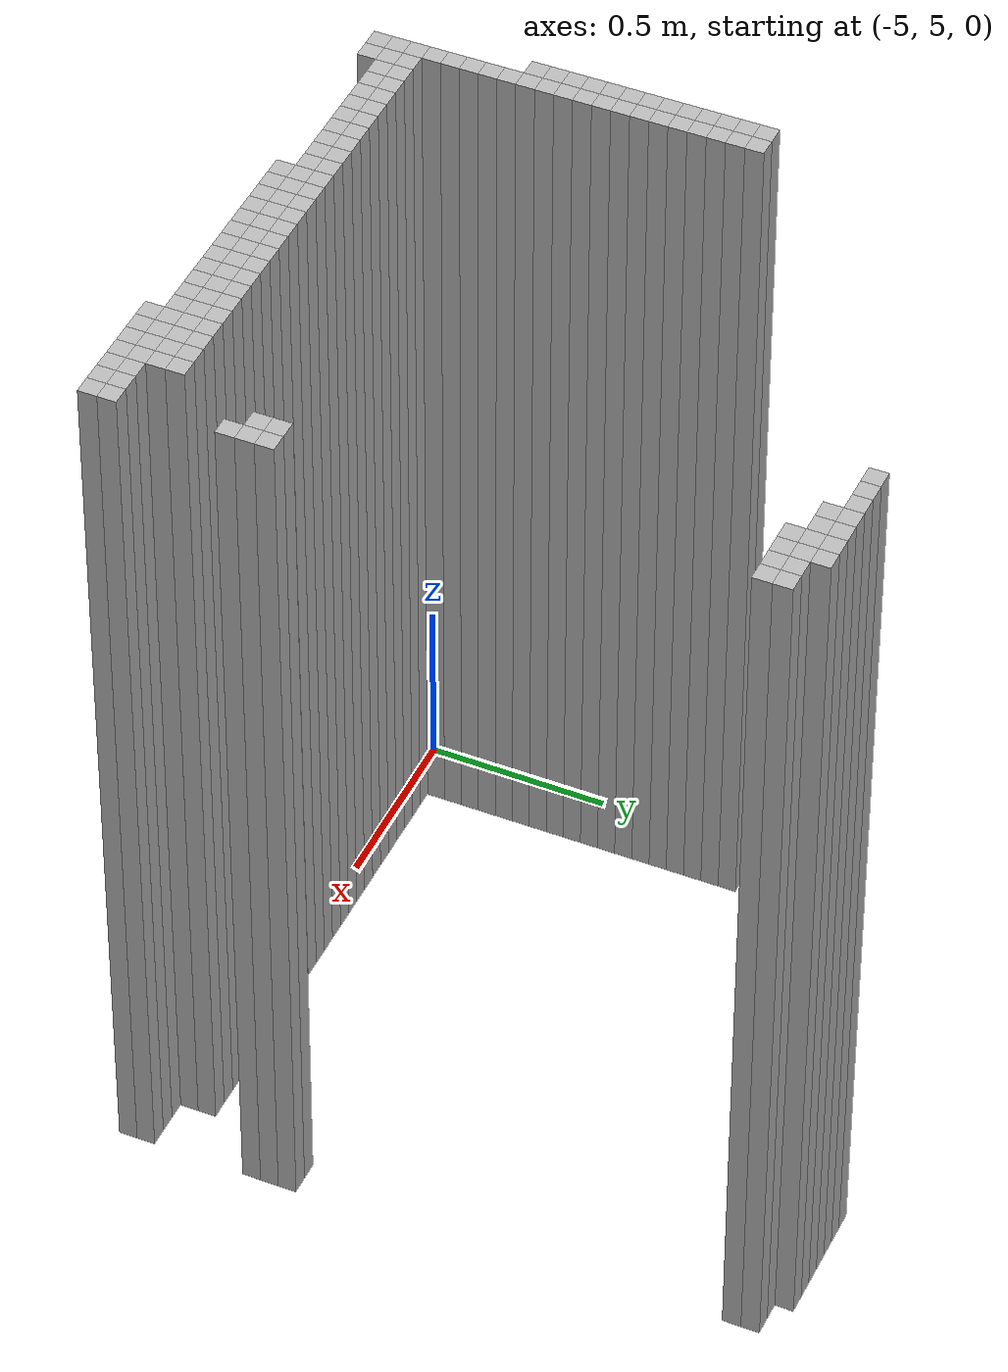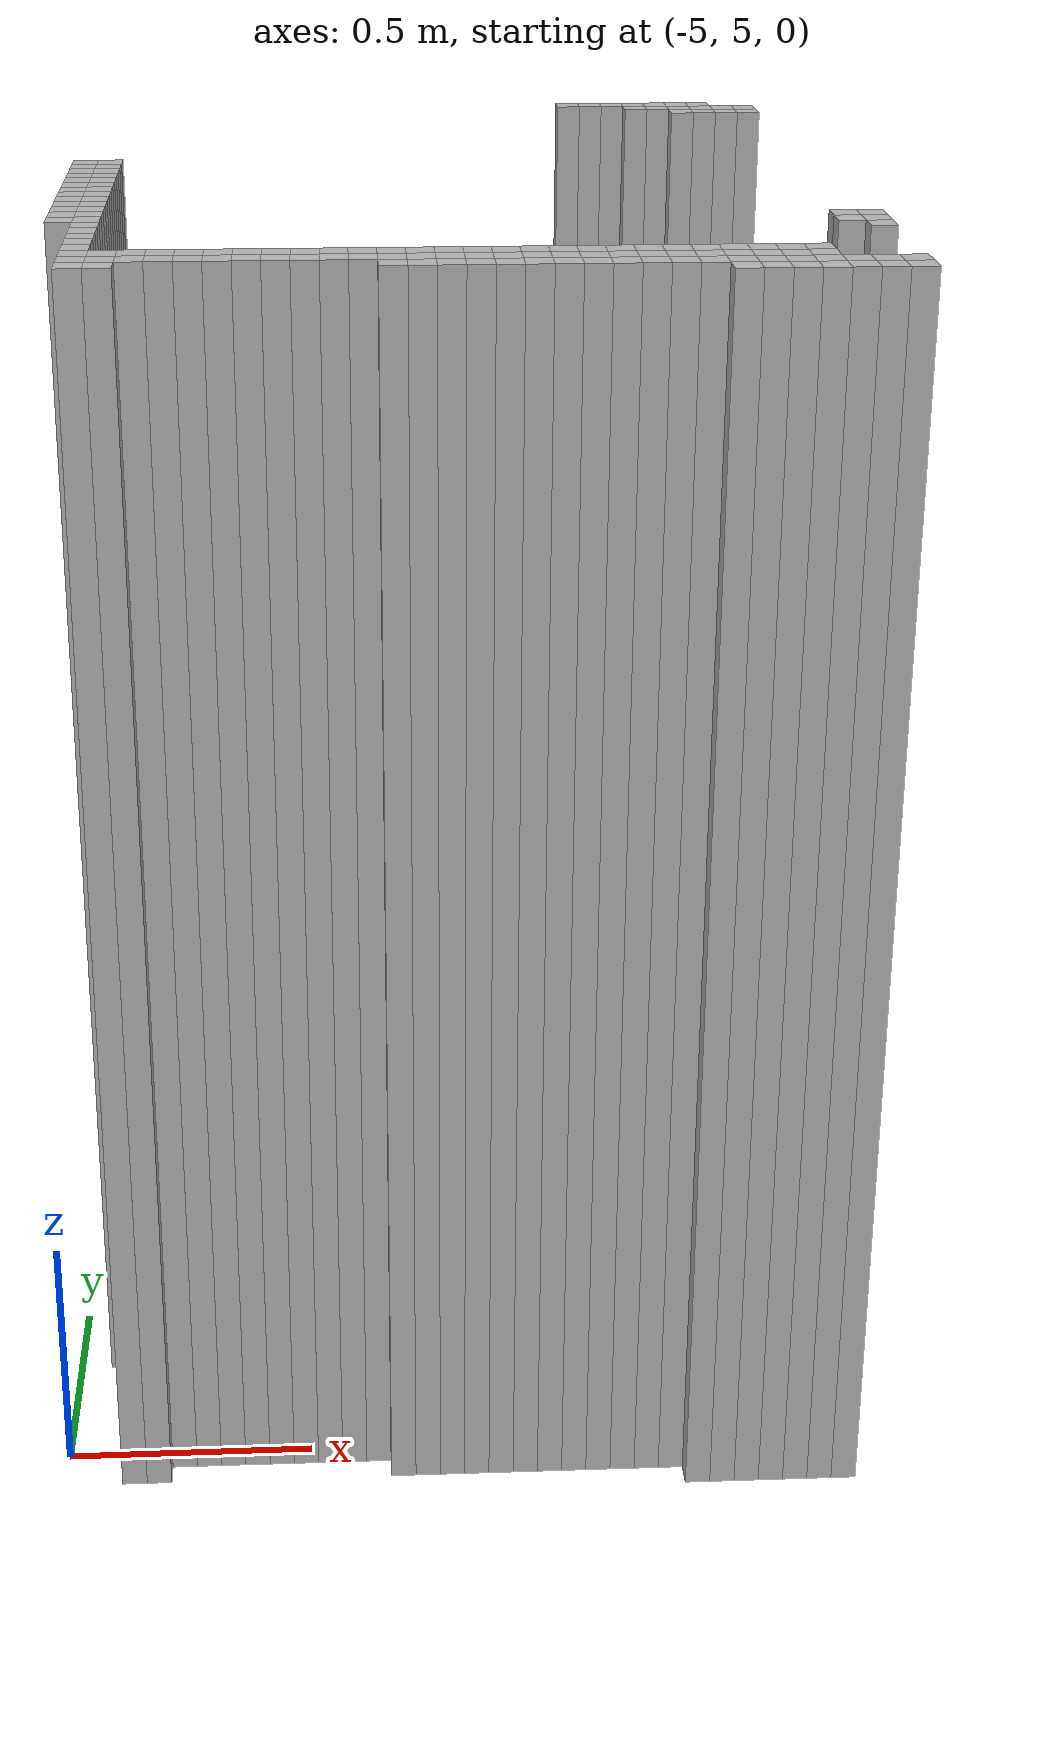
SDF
<sdf version="1.9">
 <world name="map_world">
  <model name="wall_146_21">
   <static>true</static>
   <pose>-3.861 6.630 1.250 0 0 0</pose>
   <link name="link">
    <collision name="collision"><geometry><box><size>0.050 0.050 2.500</size></box></geometry></collision>
    <visual name="visual"><geometry><box><size>0.050 0.050 2.500</size></box></geometry></visual>
   </link>
  </model>
  <model name="wall_147_21">
   <static>true</static>
   <pose>-3.811 6.630 1.250 0 0 0</pose>
   <link name="link">
    <collision name="collision"><geometry><box><size>0.050 0.050 2.500</size></box></geometry></collision>
    <visual name="visual"><geometry><box><size>0.050 0.050 2.500</size></box></geometry></visual>
   </link>
  </model>
  <model name="wall_148_21">
   <static>true</static>
   <pose>-3.761 6.630 1.250 0 0 0</pose>
   <link name="link">
    <collision name="collision"><geometry><box><size>0.050 0.050 2.500</size></box></geometry></collision>
    <visual name="visual"><geometry><box><size>0.050 0.050 2.500</size></box></geometry></visual>
   </link>
  </model>
  <model name="wall_149_21">
   <static>true</static>
   <pose>-3.711 6.630 1.250 0 0 0</pose>
   <link name="link">
    <collision name="collision"><geometry><box><size>0.050 0.050 2.500</size></box></geometry></collision>
    <visual name="visual"><geometry><box><size>0.050 0.050 2.500</size></box></geometry></visual>
   </link>
  </model>
  <model name="wall_150_21">
   <static>true</static>
   <pose>-3.661 6.630 1.250 0 0 0</pose>
   <link name="link">
    <collision name="collision"><geometry><box><size>0.050 0.050 2.500</size></box></geometry></collision>
    <visual name="visual"><geometry><box><size>0.050 0.050 2.500</size></box></geometry></visual>
   </link>
  </model>
  <model name="wall_151_21">
   <static>true</static>
   <pose>-3.611 6.630 1.250 0 0 0</pose>
   <link name="link">
    <collision name="collision"><geometry><box><size>0.050 0.050 2.500</size></box></geometry></collision>
    <visual name="visual"><geometry><box><size>0.050 0.050 2.500</size></box></geometry></visual>
   </link>
  </model>
  <model name="wall_152_21">
   <static>true</static>
   <pose>-3.561 6.630 1.250 0 0 0</pose>
   <link name="link">
    <collision name="collision"><geometry><box><size>0.050 0.050 2.500</size></box></geometry></collision>
    <visual name="visual"><geometry><box><size>0.050 0.050 2.500</size></box></geometry></visual>
   </link>
  </model>
  <model name="wall_149_22">
   <static>true</static>
   <pose>-3.711 6.580 1.250 0 0 0</pose>
   <link name="link">
    <collision name="collision"><geometry><box><size>0.050 0.050 2.500</size></box></geometry></collision>
    <visual name="visual"><geometry><box><size>0.050 0.050 2.500</size></box></geometry></visual>
   </link>
  </model>
  <model name="wall_150_22">
   <static>true</static>
   <pose>-3.661 6.580 1.250 0 0 0</pose>
   <link name="link">
    <collision name="collision"><geometry><box><size>0.050 0.050 2.500</size></box></geometry></collision>
    <visual name="visual"><geometry><box><size>0.050 0.050 2.500</size></box></geometry></visual>
   </link>
  </model>
  <model name="wall_151_22">
   <static>true</static>
   <pose>-3.611 6.580 1.250 0 0 0</pose>
   <link name="link">
    <collision name="collision"><geometry><box><size>0.050 0.050 2.500</size></box></geometry></collision>
    <visual name="visual"><geometry><box><size>0.050 0.050 2.500</size></box></geometry></visual>
   </link>
  </model>
  <model name="wall_152_22">
   <static>true</static>
   <pose>-3.561 6.580 1.250 0 0 0</pose>
   <link name="link">
    <collision name="collision"><geometry><box><size>0.050 0.050 2.500</size></box></geometry></collision>
    <visual name="visual"><geometry><box><size>0.050 0.050 2.500</size></box></geometry></visual>
   </link>
  </model>
  <model name="wall_153_22">
   <static>true</static>
   <pose>-3.511 6.580 1.250 0 0 0</pose>
   <link name="link">
    <collision name="collision"><geometry><box><size>0.050 0.050 2.500</size></box></geometry></collision>
    <visual name="visual"><geometry><box><size>0.050 0.050 2.500</size></box></geometry></visual>
   </link>
  </model>
  <model name="wall_154_22">
   <static>true</static>
   <pose>-3.461 6.580 1.250 0 0 0</pose>
   <link name="link">
    <collision name="collision"><geometry><box><size>0.050 0.050 2.500</size></box></geometry></collision>
    <visual name="visual"><geometry><box><size>0.050 0.050 2.500</size></box></geometry></visual>
   </link>
  </model>
  <model name="wall_151_23">
   <static>true</static>
   <pose>-3.611 6.530 1.250 0 0 0</pose>
   <link name="link">
    <collision name="collision"><geometry><box><size>0.050 0.050 2.500</size></box></geometry></collision>
    <visual name="visual"><geometry><box><size>0.050 0.050 2.500</size></box></geometry></visual>
   </link>
  </model>
  <model name="wall_152_23">
   <static>true</static>
   <pose>-3.561 6.530 1.250 0 0 0</pose>
   <link name="link">
    <collision name="collision"><geometry><box><size>0.050 0.050 2.500</size></box></geometry></collision>
    <visual name="visual"><geometry><box><size>0.050 0.050 2.500</size></box></geometry></visual>
   </link>
  </model>
  <model name="wall_153_23">
   <static>true</static>
   <pose>-3.511 6.530 1.250 0 0 0</pose>
   <link name="link">
    <collision name="collision"><geometry><box><size>0.050 0.050 2.500</size></box></geometry></collision>
    <visual name="visual"><geometry><box><size>0.050 0.050 2.500</size></box></geometry></visual>
   </link>
  </model>
  <model name="wall_154_23">
   <static>true</static>
   <pose>-3.461 6.530 1.250 0 0 0</pose>
   <link name="link">
    <collision name="collision"><geometry><box><size>0.050 0.050 2.500</size></box></geometry></collision>
    <visual name="visual"><geometry><box><size>0.050 0.050 2.500</size></box></geometry></visual>
   </link>
  </model>
  <model name="wall_125_35">
   <static>true</static>
   <pose>-4.911 5.930 1.250 0 0 0</pose>
   <link name="link">
    <collision name="collision"><geometry><box><size>0.050 0.050 2.500</size></box></geometry></collision>
    <visual name="visual"><geometry><box><size>0.050 0.050 2.500</size></box></geometry></visual>
   </link>
  </model>
  <model name="wall_126_35">
   <static>true</static>
   <pose>-4.861 5.930 1.250 0 0 0</pose>
   <link name="link">
    <collision name="collision"><geometry><box><size>0.050 0.050 2.500</size></box></geometry></collision>
    <visual name="visual"><geometry><box><size>0.050 0.050 2.500</size></box></geometry></visual>
   </link>
  </model>
  <model name="wall_125_36">
   <static>true</static>
   <pose>-4.911 5.880 1.250 0 0 0</pose>
   <link name="link">
    <collision name="collision"><geometry><box><size>0.050 0.050 2.500</size></box></geometry></collision>
    <visual name="visual"><geometry><box><size>0.050 0.050 2.500</size></box></geometry></visual>
   </link>
  </model>
  <model name="wall_126_36">
   <static>true</static>
   <pose>-4.861 5.880 1.250 0 0 0</pose>
   <link name="link">
    <collision name="collision"><geometry><box><size>0.050 0.050 2.500</size></box></geometry></collision>
    <visual name="visual"><geometry><box><size>0.050 0.050 2.500</size></box></geometry></visual>
   </link>
  </model>
  <model name="wall_125_37">
   <static>true</static>
   <pose>-4.911 5.830 1.250 0 0 0</pose>
   <link name="link">
    <collision name="collision"><geometry><box><size>0.050 0.050 2.500</size></box></geometry></collision>
    <visual name="visual"><geometry><box><size>0.050 0.050 2.500</size></box></geometry></visual>
   </link>
  </model>
  <model name="wall_126_37">
   <static>true</static>
   <pose>-4.861 5.830 1.250 0 0 0</pose>
   <link name="link">
    <collision name="collision"><geometry><box><size>0.050 0.050 2.500</size></box></geometry></collision>
    <visual name="visual"><geometry><box><size>0.050 0.050 2.500</size></box></geometry></visual>
   </link>
  </model>
  <model name="wall_125_38">
   <static>true</static>
   <pose>-4.911 5.780 1.250 0 0 0</pose>
   <link name="link">
    <collision name="collision"><geometry><box><size>0.050 0.050 2.500</size></box></geometry></collision>
    <visual name="visual"><geometry><box><size>0.050 0.050 2.500</size></box></geometry></visual>
   </link>
  </model>
  <model name="wall_126_38">
   <static>true</static>
   <pose>-4.861 5.780 1.250 0 0 0</pose>
   <link name="link">
    <collision name="collision"><geometry><box><size>0.050 0.050 2.500</size></box></geometry></collision>
    <visual name="visual"><geometry><box><size>0.050 0.050 2.500</size></box></geometry></visual>
   </link>
  </model>
  <model name="wall_125_39">
   <static>true</static>
   <pose>-4.911 5.730 1.250 0 0 0</pose>
   <link name="link">
    <collision name="collision"><geometry><box><size>0.050 0.050 2.500</size></box></geometry></collision>
    <visual name="visual"><geometry><box><size>0.050 0.050 2.500</size></box></geometry></visual>
   </link>
  </model>
  <model name="wall_126_39">
   <static>true</static>
   <pose>-4.861 5.730 1.250 0 0 0</pose>
   <link name="link">
    <collision name="collision"><geometry><box><size>0.050 0.050 2.500</size></box></geometry></collision>
    <visual name="visual"><geometry><box><size>0.050 0.050 2.500</size></box></geometry></visual>
   </link>
  </model>
  <model name="wall_125_40">
   <static>true</static>
   <pose>-4.911 5.680 1.250 0 0 0</pose>
   <link name="link">
    <collision name="collision"><geometry><box><size>0.050 0.050 2.500</size></box></geometry></collision>
    <visual name="visual"><geometry><box><size>0.050 0.050 2.500</size></box></geometry></visual>
   </link>
  </model>
  <model name="wall_126_40">
   <static>true</static>
   <pose>-4.861 5.680 1.250 0 0 0</pose>
   <link name="link">
    <collision name="collision"><geometry><box><size>0.050 0.050 2.500</size></box></geometry></collision>
    <visual name="visual"><geometry><box><size>0.050 0.050 2.500</size></box></geometry></visual>
   </link>
  </model>
  <model name="wall_125_41">
   <static>true</static>
   <pose>-4.911 5.630 1.250 0 0 0</pose>
   <link name="link">
    <collision name="collision"><geometry><box><size>0.050 0.050 2.500</size></box></geometry></collision>
    <visual name="visual"><geometry><box><size>0.050 0.050 2.500</size></box></geometry></visual>
   </link>
  </model>
  <model name="wall_126_41">
   <static>true</static>
   <pose>-4.861 5.630 1.250 0 0 0</pose>
   <link name="link">
    <collision name="collision"><geometry><box><size>0.050 0.050 2.500</size></box></geometry></collision>
    <visual name="visual"><geometry><box><size>0.050 0.050 2.500</size></box></geometry></visual>
   </link>
  </model>
  <model name="wall_125_42">
   <static>true</static>
   <pose>-4.911 5.580 1.250 0 0 0</pose>
   <link name="link">
    <collision name="collision"><geometry><box><size>0.050 0.050 2.500</size></box></geometry></collision>
    <visual name="visual"><geometry><box><size>0.050 0.050 2.500</size></box></geometry></visual>
   </link>
  </model>
  <model name="wall_126_42">
   <static>true</static>
   <pose>-4.861 5.580 1.250 0 0 0</pose>
   <link name="link">
    <collision name="collision"><geometry><box><size>0.050 0.050 2.500</size></box></geometry></collision>
    <visual name="visual"><geometry><box><size>0.050 0.050 2.500</size></box></geometry></visual>
   </link>
  </model>
  <model name="wall_125_43">
   <static>true</static>
   <pose>-4.911 5.530 1.250 0 0 0</pose>
   <link name="link">
    <collision name="collision"><geometry><box><size>0.050 0.050 2.500</size></box></geometry></collision>
    <visual name="visual"><geometry><box><size>0.050 0.050 2.500</size></box></geometry></visual>
   </link>
  </model>
  <model name="wall_126_43">
   <static>true</static>
   <pose>-4.861 5.530 1.250 0 0 0</pose>
   <link name="link">
    <collision name="collision"><geometry><box><size>0.050 0.050 2.500</size></box></geometry></collision>
    <visual name="visual"><geometry><box><size>0.050 0.050 2.500</size></box></geometry></visual>
   </link>
  </model>
  <model name="wall_125_44">
   <static>true</static>
   <pose>-4.911 5.480 1.250 0 0 0</pose>
   <link name="link">
    <collision name="collision"><geometry><box><size>0.050 0.050 2.500</size></box></geometry></collision>
    <visual name="visual"><geometry><box><size>0.050 0.050 2.500</size></box></geometry></visual>
   </link>
  </model>
  <model name="wall_126_44">
   <static>true</static>
   <pose>-4.861 5.480 1.250 0 0 0</pose>
   <link name="link">
    <collision name="collision"><geometry><box><size>0.050 0.050 2.500</size></box></geometry></collision>
    <visual name="visual"><geometry><box><size>0.050 0.050 2.500</size></box></geometry></visual>
   </link>
  </model>
  <model name="wall_125_45">
   <static>true</static>
   <pose>-4.911 5.430 1.250 0 0 0</pose>
   <link name="link">
    <collision name="collision"><geometry><box><size>0.050 0.050 2.500</size></box></geometry></collision>
    <visual name="visual"><geometry><box><size>0.050 0.050 2.500</size></box></geometry></visual>
   </link>
  </model>
  <model name="wall_126_45">
   <static>true</static>
   <pose>-4.861 5.430 1.250 0 0 0</pose>
   <link name="link">
    <collision name="collision"><geometry><box><size>0.050 0.050 2.500</size></box></geometry></collision>
    <visual name="visual"><geometry><box><size>0.050 0.050 2.500</size></box></geometry></visual>
   </link>
  </model>
  <model name="wall_125_46">
   <static>true</static>
   <pose>-4.911 5.380 1.250 0 0 0</pose>
   <link name="link">
    <collision name="collision"><geometry><box><size>0.050 0.050 2.500</size></box></geometry></collision>
    <visual name="visual"><geometry><box><size>0.050 0.050 2.500</size></box></geometry></visual>
   </link>
  </model>
  <model name="wall_126_46">
   <static>true</static>
   <pose>-4.861 5.380 1.250 0 0 0</pose>
   <link name="link">
    <collision name="collision"><geometry><box><size>0.050 0.050 2.500</size></box></geometry></collision>
    <visual name="visual"><geometry><box><size>0.050 0.050 2.500</size></box></geometry></visual>
   </link>
  </model>
  <model name="wall_125_47">
   <static>true</static>
   <pose>-4.911 5.330 1.250 0 0 0</pose>
   <link name="link">
    <collision name="collision"><geometry><box><size>0.050 0.050 2.500</size></box></geometry></collision>
    <visual name="visual"><geometry><box><size>0.050 0.050 2.500</size></box></geometry></visual>
   </link>
  </model>
  <model name="wall_126_47">
   <static>true</static>
   <pose>-4.861 5.330 1.250 0 0 0</pose>
   <link name="link">
    <collision name="collision"><geometry><box><size>0.050 0.050 2.500</size></box></geometry></collision>
    <visual name="visual"><geometry><box><size>0.050 0.050 2.500</size></box></geometry></visual>
   </link>
  </model>
  <model name="wall_154_47">
   <static>true</static>
   <pose>-3.461 5.330 1.250 0 0 0</pose>
   <link name="link">
    <collision name="collision"><geometry><box><size>0.050 0.050 2.500</size></box></geometry></collision>
    <visual name="visual"><geometry><box><size>0.050 0.050 2.500</size></box></geometry></visual>
   </link>
  </model>
  <model name="wall_155_47">
   <static>true</static>
   <pose>-3.411 5.330 1.250 0 0 0</pose>
   <link name="link">
    <collision name="collision"><geometry><box><size>0.050 0.050 2.500</size></box></geometry></collision>
    <visual name="visual"><geometry><box><size>0.050 0.050 2.500</size></box></geometry></visual>
   </link>
  </model>
  <model name="wall_126_48">
   <static>true</static>
   <pose>-4.861 5.280 1.250 0 0 0</pose>
   <link name="link">
    <collision name="collision"><geometry><box><size>0.050 0.050 2.500</size></box></geometry></collision>
    <visual name="visual"><geometry><box><size>0.050 0.050 2.500</size></box></geometry></visual>
   </link>
  </model>
  <model name="wall_154_48">
   <static>true</static>
   <pose>-3.461 5.280 1.250 0 0 0</pose>
   <link name="link">
    <collision name="collision"><geometry><box><size>0.050 0.050 2.500</size></box></geometry></collision>
    <visual name="visual"><geometry><box><size>0.050 0.050 2.500</size></box></geometry></visual>
   </link>
  </model>
  <model name="wall_155_48">
   <static>true</static>
   <pose>-3.411 5.280 1.250 0 0 0</pose>
   <link name="link">
    <collision name="collision"><geometry><box><size>0.050 0.050 2.500</size></box></geometry></collision>
    <visual name="visual"><geometry><box><size>0.050 0.050 2.500</size></box></geometry></visual>
   </link>
  </model>
  <model name="wall_126_49">
   <static>true</static>
   <pose>-4.861 5.230 1.250 0 0 0</pose>
   <link name="link">
    <collision name="collision"><geometry><box><size>0.050 0.050 2.500</size></box></geometry></collision>
    <visual name="visual"><geometry><box><size>0.050 0.050 2.500</size></box></geometry></visual>
   </link>
  </model>
  <model name="wall_155_49">
   <static>true</static>
   <pose>-3.411 5.230 1.250 0 0 0</pose>
   <link name="link">
    <collision name="collision"><geometry><box><size>0.050 0.050 2.500</size></box></geometry></collision>
    <visual name="visual"><geometry><box><size>0.050 0.050 2.500</size></box></geometry></visual>
   </link>
  </model>
  <model name="wall_126_50">
   <static>true</static>
   <pose>-4.861 5.180 1.250 0 0 0</pose>
   <link name="link">
    <collision name="collision"><geometry><box><size>0.050 0.050 2.500</size></box></geometry></collision>
    <visual name="visual"><geometry><box><size>0.050 0.050 2.500</size></box></geometry></visual>
   </link>
  </model>
  <model name="wall_126_51">
   <static>true</static>
   <pose>-4.861 5.130 1.250 0 0 0</pose>
   <link name="link">
    <collision name="collision"><geometry><box><size>0.050 0.050 2.500</size></box></geometry></collision>
    <visual name="visual"><geometry><box><size>0.050 0.050 2.500</size></box></geometry></visual>
   </link>
  </model>
  <model name="wall_126_52">
   <static>true</static>
   <pose>-4.861 5.080 1.250 0 0 0</pose>
   <link name="link">
    <collision name="collision"><geometry><box><size>0.050 0.050 2.500</size></box></geometry></collision>
    <visual name="visual"><geometry><box><size>0.050 0.050 2.500</size></box></geometry></visual>
   </link>
  </model>
  <model name="wall_126_53">
   <static>true</static>
   <pose>-4.861 5.030 1.250 0 0 0</pose>
   <link name="link">
    <collision name="collision"><geometry><box><size>0.050 0.050 2.500</size></box></geometry></collision>
    <visual name="visual"><geometry><box><size>0.050 0.050 2.500</size></box></geometry></visual>
   </link>
  </model>
  <model name="wall_127_53">
   <static>true</static>
   <pose>-4.811 5.030 1.250 0 0 0</pose>
   <link name="link">
    <collision name="collision"><geometry><box><size>0.050 0.050 2.500</size></box></geometry></collision>
    <visual name="visual"><geometry><box><size>0.050 0.050 2.500</size></box></geometry></visual>
   </link>
  </model>
  <model name="wall_128_53">
   <static>true</static>
   <pose>-4.761 5.030 1.250 0 0 0</pose>
   <link name="link">
    <collision name="collision"><geometry><box><size>0.050 0.050 2.500</size></box></geometry></collision>
    <visual name="visual"><geometry><box><size>0.050 0.050 2.500</size></box></geometry></visual>
   </link>
  </model>
  <model name="wall_129_53">
   <static>true</static>
   <pose>-4.711 5.030 1.250 0 0 0</pose>
   <link name="link">
    <collision name="collision"><geometry><box><size>0.050 0.050 2.500</size></box></geometry></collision>
    <visual name="visual"><geometry><box><size>0.050 0.050 2.500</size></box></geometry></visual>
   </link>
  </model>
  <model name="wall_130_53">
   <static>true</static>
   <pose>-4.661 5.030 1.250 0 0 0</pose>
   <link name="link">
    <collision name="collision"><geometry><box><size>0.050 0.050 2.500</size></box></geometry></collision>
    <visual name="visual"><geometry><box><size>0.050 0.050 2.500</size></box></geometry></visual>
   </link>
  </model>
  <model name="wall_131_53">
   <static>true</static>
   <pose>-4.611 5.030 1.250 0 0 0</pose>
   <link name="link">
    <collision name="collision"><geometry><box><size>0.050 0.050 2.500</size></box></geometry></collision>
    <visual name="visual"><geometry><box><size>0.050 0.050 2.500</size></box></geometry></visual>
   </link>
  </model>
  <model name="wall_132_53">
   <static>true</static>
   <pose>-4.561 5.030 1.250 0 0 0</pose>
   <link name="link">
    <collision name="collision"><geometry><box><size>0.050 0.050 2.500</size></box></geometry></collision>
    <visual name="visual"><geometry><box><size>0.050 0.050 2.500</size></box></geometry></visual>
   </link>
  </model>
  <model name="wall_133_53">
   <static>true</static>
   <pose>-4.511 5.030 1.250 0 0 0</pose>
   <link name="link">
    <collision name="collision"><geometry><box><size>0.050 0.050 2.500</size></box></geometry></collision>
    <visual name="visual"><geometry><box><size>0.050 0.050 2.500</size></box></geometry></visual>
   </link>
  </model>
  <model name="wall_134_53">
   <static>true</static>
   <pose>-4.461 5.030 1.250 0 0 0</pose>
   <link name="link">
    <collision name="collision"><geometry><box><size>0.050 0.050 2.500</size></box></geometry></collision>
    <visual name="visual"><geometry><box><size>0.050 0.050 2.500</size></box></geometry></visual>
   </link>
  </model>
  <model name="wall_135_53">
   <static>true</static>
   <pose>-4.411 5.030 1.250 0 0 0</pose>
   <link name="link">
    <collision name="collision"><geometry><box><size>0.050 0.050 2.500</size></box></geometry></collision>
    <visual name="visual"><geometry><box><size>0.050 0.050 2.500</size></box></geometry></visual>
   </link>
  </model>
  <model name="wall_136_53">
   <static>true</static>
   <pose>-4.361 5.030 1.250 0 0 0</pose>
   <link name="link">
    <collision name="collision"><geometry><box><size>0.050 0.050 2.500</size></box></geometry></collision>
    <visual name="visual"><geometry><box><size>0.050 0.050 2.500</size></box></geometry></visual>
   </link>
  </model>
  <model name="wall_137_53">
   <static>true</static>
   <pose>-4.311 5.030 1.250 0 0 0</pose>
   <link name="link">
    <collision name="collision"><geometry><box><size>0.050 0.050 2.500</size></box></geometry></collision>
    <visual name="visual"><geometry><box><size>0.050 0.050 2.500</size></box></geometry></visual>
   </link>
  </model>
  <model name="wall_138_53">
   <static>true</static>
   <pose>-4.261 5.030 1.250 0 0 0</pose>
   <link name="link">
    <collision name="collision"><geometry><box><size>0.050 0.050 2.500</size></box></geometry></collision>
    <visual name="visual"><geometry><box><size>0.050 0.050 2.500</size></box></geometry></visual>
   </link>
  </model>
  <model name="wall_139_53">
   <static>true</static>
   <pose>-4.211 5.030 1.250 0 0 0</pose>
   <link name="link">
    <collision name="collision"><geometry><box><size>0.050 0.050 2.500</size></box></geometry></collision>
    <visual name="visual"><geometry><box><size>0.050 0.050 2.500</size></box></geometry></visual>
   </link>
  </model>
  <model name="wall_140_53">
   <static>true</static>
   <pose>-4.161 5.030 1.250 0 0 0</pose>
   <link name="link">
    <collision name="collision"><geometry><box><size>0.050 0.050 2.500</size></box></geometry></collision>
    <visual name="visual"><geometry><box><size>0.050 0.050 2.500</size></box></geometry></visual>
   </link>
  </model>
  <model name="wall_141_53">
   <static>true</static>
   <pose>-4.111 5.030 1.250 0 0 0</pose>
   <link name="link">
    <collision name="collision"><geometry><box><size>0.050 0.050 2.500</size></box></geometry></collision>
    <visual name="visual"><geometry><box><size>0.050 0.050 2.500</size></box></geometry></visual>
   </link>
  </model>
  <model name="wall_142_53">
   <static>true</static>
   <pose>-4.061 5.030 1.250 0 0 0</pose>
   <link name="link">
    <collision name="collision"><geometry><box><size>0.050 0.050 2.500</size></box></geometry></collision>
    <visual name="visual"><geometry><box><size>0.050 0.050 2.500</size></box></geometry></visual>
   </link>
  </model>
  <model name="wall_143_53">
   <static>true</static>
   <pose>-4.011 5.030 1.250 0 0 0</pose>
   <link name="link">
    <collision name="collision"><geometry><box><size>0.050 0.050 2.500</size></box></geometry></collision>
    <visual name="visual"><geometry><box><size>0.050 0.050 2.500</size></box></geometry></visual>
   </link>
  </model>
  <model name="wall_144_53">
   <static>true</static>
   <pose>-3.961 5.030 1.250 0 0 0</pose>
   <link name="link">
    <collision name="collision"><geometry><box><size>0.050 0.050 2.500</size></box></geometry></collision>
    <visual name="visual"><geometry><box><size>0.050 0.050 2.500</size></box></geometry></visual>
   </link>
  </model>
  <model name="wall_145_53">
   <static>true</static>
   <pose>-3.911 5.030 1.250 0 0 0</pose>
   <link name="link">
    <collision name="collision"><geometry><box><size>0.050 0.050 2.500</size></box></geometry></collision>
    <visual name="visual"><geometry><box><size>0.050 0.050 2.500</size></box></geometry></visual>
   </link>
  </model>
  <model name="wall_146_53">
   <static>true</static>
   <pose>-3.861 5.030 1.250 0 0 0</pose>
   <link name="link">
    <collision name="collision"><geometry><box><size>0.050 0.050 2.500</size></box></geometry></collision>
    <visual name="visual"><geometry><box><size>0.050 0.050 2.500</size></box></geometry></visual>
   </link>
  </model>
  <model name="wall_147_53">
   <static>true</static>
   <pose>-3.811 5.030 1.250 0 0 0</pose>
   <link name="link">
    <collision name="collision"><geometry><box><size>0.050 0.050 2.500</size></box></geometry></collision>
    <visual name="visual"><geometry><box><size>0.050 0.050 2.500</size></box></geometry></visual>
   </link>
  </model>
  <model name="wall_148_53">
   <static>true</static>
   <pose>-3.761 5.030 1.250 0 0 0</pose>
   <link name="link">
    <collision name="collision"><geometry><box><size>0.050 0.050 2.500</size></box></geometry></collision>
    <visual name="visual"><geometry><box><size>0.050 0.050 2.500</size></box></geometry></visual>
   </link>
  </model>
  <model name="wall_149_53">
   <static>true</static>
   <pose>-3.711 5.030 1.250 0 0 0</pose>
   <link name="link">
    <collision name="collision"><geometry><box><size>0.050 0.050 2.500</size></box></geometry></collision>
    <visual name="visual"><geometry><box><size>0.050 0.050 2.500</size></box></geometry></visual>
   </link>
  </model>
  <model name="wall_150_53">
   <static>true</static>
   <pose>-3.661 5.030 1.250 0 0 0</pose>
   <link name="link">
    <collision name="collision"><geometry><box><size>0.050 0.050 2.500</size></box></geometry></collision>
    <visual name="visual"><geometry><box><size>0.050 0.050 2.500</size></box></geometry></visual>
   </link>
  </model>
  <model name="wall_151_53">
   <static>true</static>
   <pose>-3.611 5.030 1.250 0 0 0</pose>
   <link name="link">
    <collision name="collision"><geometry><box><size>0.050 0.050 2.500</size></box></geometry></collision>
    <visual name="visual"><geometry><box><size>0.050 0.050 2.500</size></box></geometry></visual>
   </link>
  </model>
  <model name="wall_152_53">
   <static>true</static>
   <pose>-3.561 5.030 1.250 0 0 0</pose>
   <link name="link">
    <collision name="collision"><geometry><box><size>0.050 0.050 2.500</size></box></geometry></collision>
    <visual name="visual"><geometry><box><size>0.050 0.050 2.500</size></box></geometry></visual>
   </link>
  </model>
  <model name="wall_126_54">
   <static>true</static>
   <pose>-4.861 4.980 1.250 0 0 0</pose>
   <link name="link">
    <collision name="collision"><geometry><box><size>0.050 0.050 2.500</size></box></geometry></collision>
    <visual name="visual"><geometry><box><size>0.050 0.050 2.500</size></box></geometry></visual>
   </link>
  </model>
  <model name="wall_127_54">
   <static>true</static>
   <pose>-4.811 4.980 1.250 0 0 0</pose>
   <link name="link">
    <collision name="collision"><geometry><box><size>0.050 0.050 2.500</size></box></geometry></collision>
    <visual name="visual"><geometry><box><size>0.050 0.050 2.500</size></box></geometry></visual>
   </link>
  </model>
  <model name="wall_128_54">
   <static>true</static>
   <pose>-4.761 4.980 1.250 0 0 0</pose>
   <link name="link">
    <collision name="collision"><geometry><box><size>0.050 0.050 2.500</size></box></geometry></collision>
    <visual name="visual"><geometry><box><size>0.050 0.050 2.500</size></box></geometry></visual>
   </link>
  </model>
  <model name="wall_129_54">
   <static>true</static>
   <pose>-4.711 4.980 1.250 0 0 0</pose>
   <link name="link">
    <collision name="collision"><geometry><box><size>0.050 0.050 2.500</size></box></geometry></collision>
    <visual name="visual"><geometry><box><size>0.050 0.050 2.500</size></box></geometry></visual>
   </link>
  </model>
  <model name="wall_130_54">
   <static>true</static>
   <pose>-4.661 4.980 1.250 0 0 0</pose>
   <link name="link">
    <collision name="collision"><geometry><box><size>0.050 0.050 2.500</size></box></geometry></collision>
    <visual name="visual"><geometry><box><size>0.050 0.050 2.500</size></box></geometry></visual>
   </link>
  </model>
  <model name="wall_131_54">
   <static>true</static>
   <pose>-4.611 4.980 1.250 0 0 0</pose>
   <link name="link">
    <collision name="collision"><geometry><box><size>0.050 0.050 2.500</size></box></geometry></collision>
    <visual name="visual"><geometry><box><size>0.050 0.050 2.500</size></box></geometry></visual>
   </link>
  </model>
  <model name="wall_132_54">
   <static>true</static>
   <pose>-4.561 4.980 1.250 0 0 0</pose>
   <link name="link">
    <collision name="collision"><geometry><box><size>0.050 0.050 2.500</size></box></geometry></collision>
    <visual name="visual"><geometry><box><size>0.050 0.050 2.500</size></box></geometry></visual>
   </link>
  </model>
  <model name="wall_133_54">
   <static>true</static>
   <pose>-4.511 4.980 1.250 0 0 0</pose>
   <link name="link">
    <collision name="collision"><geometry><box><size>0.050 0.050 2.500</size></box></geometry></collision>
    <visual name="visual"><geometry><box><size>0.050 0.050 2.500</size></box></geometry></visual>
   </link>
  </model>
  <model name="wall_134_54">
   <static>true</static>
   <pose>-4.461 4.980 1.250 0 0 0</pose>
   <link name="link">
    <collision name="collision"><geometry><box><size>0.050 0.050 2.500</size></box></geometry></collision>
    <visual name="visual"><geometry><box><size>0.050 0.050 2.500</size></box></geometry></visual>
   </link>
  </model>
  <model name="wall_135_54">
   <static>true</static>
   <pose>-4.411 4.980 1.250 0 0 0</pose>
   <link name="link">
    <collision name="collision"><geometry><box><size>0.050 0.050 2.500</size></box></geometry></collision>
    <visual name="visual"><geometry><box><size>0.050 0.050 2.500</size></box></geometry></visual>
   </link>
  </model>
  <model name="wall_136_54">
   <static>true</static>
   <pose>-4.361 4.980 1.250 0 0 0</pose>
   <link name="link">
    <collision name="collision"><geometry><box><size>0.050 0.050 2.500</size></box></geometry></collision>
    <visual name="visual"><geometry><box><size>0.050 0.050 2.500</size></box></geometry></visual>
   </link>
  </model>
  <model name="wall_137_54">
   <static>true</static>
   <pose>-4.311 4.980 1.250 0 0 0</pose>
   <link name="link">
    <collision name="collision"><geometry><box><size>0.050 0.050 2.500</size></box></geometry></collision>
    <visual name="visual"><geometry><box><size>0.050 0.050 2.500</size></box></geometry></visual>
   </link>
  </model>
  <model name="wall_138_54">
   <static>true</static>
   <pose>-4.261 4.980 1.250 0 0 0</pose>
   <link name="link">
    <collision name="collision"><geometry><box><size>0.050 0.050 2.500</size></box></geometry></collision>
    <visual name="visual"><geometry><box><size>0.050 0.050 2.500</size></box></geometry></visual>
   </link>
  </model>
  <model name="wall_139_54">
   <static>true</static>
   <pose>-4.211 4.980 1.250 0 0 0</pose>
   <link name="link">
    <collision name="collision"><geometry><box><size>0.050 0.050 2.500</size></box></geometry></collision>
    <visual name="visual"><geometry><box><size>0.050 0.050 2.500</size></box></geometry></visual>
   </link>
  </model>
  <model name="wall_140_54">
   <static>true</static>
   <pose>-4.161 4.980 1.250 0 0 0</pose>
   <link name="link">
    <collision name="collision"><geometry><box><size>0.050 0.050 2.500</size></box></geometry></collision>
    <visual name="visual"><geometry><box><size>0.050 0.050 2.500</size></box></geometry></visual>
   </link>
  </model>
  <model name="wall_141_54">
   <static>true</static>
   <pose>-4.111 4.980 1.250 0 0 0</pose>
   <link name="link">
    <collision name="collision"><geometry><box><size>0.050 0.050 2.500</size></box></geometry></collision>
    <visual name="visual"><geometry><box><size>0.050 0.050 2.500</size></box></geometry></visual>
   </link>
  </model>
  <model name="wall_142_54">
   <static>true</static>
   <pose>-4.061 4.980 1.250 0 0 0</pose>
   <link name="link">
    <collision name="collision"><geometry><box><size>0.050 0.050 2.500</size></box></geometry></collision>
    <visual name="visual"><geometry><box><size>0.050 0.050 2.500</size></box></geometry></visual>
   </link>
  </model>
  <model name="wall_143_54">
   <static>true</static>
   <pose>-4.011 4.980 1.250 0 0 0</pose>
   <link name="link">
    <collision name="collision"><geometry><box><size>0.050 0.050 2.500</size></box></geometry></collision>
    <visual name="visual"><geometry><box><size>0.050 0.050 2.500</size></box></geometry></visual>
   </link>
  </model>
  <model name="wall_144_54">
   <static>true</static>
   <pose>-3.961 4.980 1.250 0 0 0</pose>
   <link name="link">
    <collision name="collision"><geometry><box><size>0.050 0.050 2.500</size></box></geometry></collision>
    <visual name="visual"><geometry><box><size>0.050 0.050 2.500</size></box></geometry></visual>
   </link>
  </model>
  <model name="wall_145_54">
   <static>true</static>
   <pose>-3.911 4.980 1.250 0 0 0</pose>
   <link name="link">
    <collision name="collision"><geometry><box><size>0.050 0.050 2.500</size></box></geometry></collision>
    <visual name="visual"><geometry><box><size>0.050 0.050 2.500</size></box></geometry></visual>
   </link>
  </model>
  <model name="wall_146_54">
   <static>true</static>
   <pose>-3.861 4.980 1.250 0 0 0</pose>
   <link name="link">
    <collision name="collision"><geometry><box><size>0.050 0.050 2.500</size></box></geometry></collision>
    <visual name="visual"><geometry><box><size>0.050 0.050 2.500</size></box></geometry></visual>
   </link>
  </model>
  <model name="wall_147_54">
   <static>true</static>
   <pose>-3.811 4.980 1.250 0 0 0</pose>
   <link name="link">
    <collision name="collision"><geometry><box><size>0.050 0.050 2.500</size></box></geometry></collision>
    <visual name="visual"><geometry><box><size>0.050 0.050 2.500</size></box></geometry></visual>
   </link>
  </model>
  <model name="wall_148_54">
   <static>true</static>
   <pose>-3.761 4.980 1.250 0 0 0</pose>
   <link name="link">
    <collision name="collision"><geometry><box><size>0.050 0.050 2.500</size></box></geometry></collision>
    <visual name="visual"><geometry><box><size>0.050 0.050 2.500</size></box></geometry></visual>
   </link>
  </model>
  <model name="wall_149_54">
   <static>true</static>
   <pose>-3.711 4.980 1.250 0 0 0</pose>
   <link name="link">
    <collision name="collision"><geometry><box><size>0.050 0.050 2.500</size></box></geometry></collision>
    <visual name="visual"><geometry><box><size>0.050 0.050 2.500</size></box></geometry></visual>
   </link>
  </model>
  <model name="wall_150_54">
   <static>true</static>
   <pose>-3.661 4.980 1.250 0 0 0</pose>
   <link name="link">
    <collision name="collision"><geometry><box><size>0.050 0.050 2.500</size></box></geometry></collision>
    <visual name="visual"><geometry><box><size>0.050 0.050 2.500</size></box></geometry></visual>
   </link>
  </model>
  <model name="wall_151_54">
   <static>true</static>
   <pose>-3.611 4.980 1.250 0 0 0</pose>
   <link name="link">
    <collision name="collision"><geometry><box><size>0.050 0.050 2.500</size></box></geometry></collision>
    <visual name="visual"><geometry><box><size>0.050 0.050 2.500</size></box></geometry></visual>
   </link>
  </model>
  <model name="wall_152_54">
   <static>true</static>
   <pose>-3.561 4.980 1.250 0 0 0</pose>
   <link name="link">
    <collision name="collision"><geometry><box><size>0.050 0.050 2.500</size></box></geometry></collision>
    <visual name="visual"><geometry><box><size>0.050 0.050 2.500</size></box></geometry></visual>
   </link>
  </model>
  <model name="wall_126_55">
   <static>true</static>
   <pose>-4.861 4.930 1.250 0 0 0</pose>
   <link name="link">
    <collision name="collision"><geometry><box><size>0.050 0.050 2.500</size></box></geometry></collision>
    <visual name="visual"><geometry><box><size>0.050 0.050 2.500</size></box></geometry></visual>
   </link>
  </model>
  <model name="wall_127_55">
   <static>true</static>
   <pose>-4.811 4.930 1.250 0 0 0</pose>
   <link name="link">
    <collision name="collision"><geometry><box><size>0.050 0.050 2.500</size></box></geometry></collision>
    <visual name="visual"><geometry><box><size>0.050 0.050 2.500</size></box></geometry></visual>
   </link>
  </model>
  <model name="wall_137_55">
   <static>true</static>
   <pose>-4.311 4.930 1.250 0 0 0</pose>
   <link name="link">
    <collision name="collision"><geometry><box><size>0.050 0.050 2.500</size></box></geometry></collision>
    <visual name="visual"><geometry><box><size>0.050 0.050 2.500</size></box></geometry></visual>
   </link>
  </model>
  <model name="wall_138_55">
   <static>true</static>
   <pose>-4.261 4.930 1.250 0 0 0</pose>
   <link name="link">
    <collision name="collision"><geometry><box><size>0.050 0.050 2.500</size></box></geometry></collision>
    <visual name="visual"><geometry><box><size>0.050 0.050 2.500</size></box></geometry></visual>
   </link>
  </model>
  <model name="wall_139_55">
   <static>true</static>
   <pose>-4.211 4.930 1.250 0 0 0</pose>
   <link name="link">
    <collision name="collision"><geometry><box><size>0.050 0.050 2.500</size></box></geometry></collision>
    <visual name="visual"><geometry><box><size>0.050 0.050 2.500</size></box></geometry></visual>
   </link>
  </model>
  <model name="wall_140_55">
   <static>true</static>
   <pose>-4.161 4.930 1.250 0 0 0</pose>
   <link name="link">
    <collision name="collision"><geometry><box><size>0.050 0.050 2.500</size></box></geometry></collision>
    <visual name="visual"><geometry><box><size>0.050 0.050 2.500</size></box></geometry></visual>
   </link>
  </model>
  <model name="wall_141_55">
   <static>true</static>
   <pose>-4.111 4.930 1.250 0 0 0</pose>
   <link name="link">
    <collision name="collision"><geometry><box><size>0.050 0.050 2.500</size></box></geometry></collision>
    <visual name="visual"><geometry><box><size>0.050 0.050 2.500</size></box></geometry></visual>
   </link>
  </model>
  <model name="wall_142_55">
   <static>true</static>
   <pose>-4.061 4.930 1.250 0 0 0</pose>
   <link name="link">
    <collision name="collision"><geometry><box><size>0.050 0.050 2.500</size></box></geometry></collision>
    <visual name="visual"><geometry><box><size>0.050 0.050 2.500</size></box></geometry></visual>
   </link>
  </model>
  <model name="wall_143_55">
   <static>true</static>
   <pose>-4.011 4.930 1.250 0 0 0</pose>
   <link name="link">
    <collision name="collision"><geometry><box><size>0.050 0.050 2.500</size></box></geometry></collision>
    <visual name="visual"><geometry><box><size>0.050 0.050 2.500</size></box></geometry></visual>
   </link>
  </model>
  <model name="wall_144_55">
   <static>true</static>
   <pose>-3.961 4.930 1.250 0 0 0</pose>
   <link name="link">
    <collision name="collision"><geometry><box><size>0.050 0.050 2.500</size></box></geometry></collision>
    <visual name="visual"><geometry><box><size>0.050 0.050 2.500</size></box></geometry></visual>
   </link>
  </model>
  <model name="wall_145_55">
   <static>true</static>
   <pose>-3.911 4.930 1.250 0 0 0</pose>
   <link name="link">
    <collision name="collision"><geometry><box><size>0.050 0.050 2.500</size></box></geometry></collision>
    <visual name="visual"><geometry><box><size>0.050 0.050 2.500</size></box></geometry></visual>
   </link>
  </model>
  <model name="wall_146_55">
   <static>true</static>
   <pose>-3.861 4.930 1.250 0 0 0</pose>
   <link name="link">
    <collision name="collision"><geometry><box><size>0.050 0.050 2.500</size></box></geometry></collision>
    <visual name="visual"><geometry><box><size>0.050 0.050 2.500</size></box></geometry></visual>
   </link>
  </model>
  <model name="wall_147_55">
   <static>true</static>
   <pose>-3.811 4.930 1.250 0 0 0</pose>
   <link name="link">
    <collision name="collision"><geometry><box><size>0.050 0.050 2.500</size></box></geometry></collision>
    <visual name="visual"><geometry><box><size>0.050 0.050 2.500</size></box></geometry></visual>
   </link>
  </model>
  <model name="wall_148_55">
   <static>true</static>
   <pose>-3.761 4.930 1.250 0 0 0</pose>
   <link name="link">
    <collision name="collision"><geometry><box><size>0.050 0.050 2.500</size></box></geometry></collision>
    <visual name="visual"><geometry><box><size>0.050 0.050 2.500</size></box></geometry></visual>
   </link>
  </model>
  <model name="wall_149_55">
   <static>true</static>
   <pose>-3.711 4.930 1.250 0 0 0</pose>
   <link name="link">
    <collision name="collision"><geometry><box><size>0.050 0.050 2.500</size></box></geometry></collision>
    <visual name="visual"><geometry><box><size>0.050 0.050 2.500</size></box></geometry></visual>
   </link>
  </model>
  <model name="wall_150_55">
   <static>true</static>
   <pose>-3.661 4.930 1.250 0 0 0</pose>
   <link name="link">
    <collision name="collision"><geometry><box><size>0.050 0.050 2.500</size></box></geometry></collision>
    <visual name="visual"><geometry><box><size>0.050 0.050 2.500</size></box></geometry></visual>
   </link>
  </model>
  <model name="wall_151_55">
   <static>true</static>
   <pose>-3.611 4.930 1.250 0 0 0</pose>
   <link name="link">
    <collision name="collision"><geometry><box><size>0.050 0.050 2.500</size></box></geometry></collision>
    <visual name="visual"><geometry><box><size>0.050 0.050 2.500</size></box></geometry></visual>
   </link>
  </model>
  <model name="wall_152_55">
   <static>true</static>
   <pose>-3.561 4.930 1.250 0 0 0</pose>
   <link name="link">
    <collision name="collision"><geometry><box><size>0.050 0.050 2.500</size></box></geometry></collision>
    <visual name="visual"><geometry><box><size>0.050 0.050 2.500</size></box></geometry></visual>
   </link>
  </model>
  <model name="wall_153_55">
   <static>true</static>
   <pose>-3.511 4.930 1.250 0 0 0</pose>
   <link name="link">
    <collision name="collision"><geometry><box><size>0.050 0.050 2.500</size></box></geometry></collision>
    <visual name="visual"><geometry><box><size>0.050 0.050 2.500</size></box></geometry></visual>
   </link>
  </model>
  <model name="wall_154_55">
   <static>true</static>
   <pose>-3.461 4.930 1.250 0 0 0</pose>
   <link name="link">
    <collision name="collision"><geometry><box><size>0.050 0.050 2.500</size></box></geometry></collision>
    <visual name="visual"><geometry><box><size>0.050 0.050 2.500</size></box></geometry></visual>
   </link>
  </model>
  <model name="wall_155_55">
   <static>true</static>
   <pose>-3.411 4.930 1.250 0 0 0</pose>
   <link name="link">
    <collision name="collision"><geometry><box><size>0.050 0.050 2.500</size></box></geometry></collision>
    <visual name="visual"><geometry><box><size>0.050 0.050 2.500</size></box></geometry></visual>
   </link>
  </model>
  <model name="wall_149_56">
   <static>true</static>
   <pose>-3.711 4.880 1.250 0 0 0</pose>
   <link name="link">
    <collision name="collision"><geometry><box><size>0.050 0.050 2.500</size></box></geometry></collision>
    <visual name="visual"><geometry><box><size>0.050 0.050 2.500</size></box></geometry></visual>
   </link>
  </model>
  <model name="wall_150_56">
   <static>true</static>
   <pose>-3.661 4.880 1.250 0 0 0</pose>
   <link name="link">
    <collision name="collision"><geometry><box><size>0.050 0.050 2.500</size></box></geometry></collision>
    <visual name="visual"><geometry><box><size>0.050 0.050 2.500</size></box></geometry></visual>
   </link>
  </model>
  <model name="wall_151_56">
   <static>true</static>
   <pose>-3.611 4.880 1.250 0 0 0</pose>
   <link name="link">
    <collision name="collision"><geometry><box><size>0.050 0.050 2.500</size></box></geometry></collision>
    <visual name="visual"><geometry><box><size>0.050 0.050 2.500</size></box></geometry></visual>
   </link>
  </model>
  <model name="wall_152_56">
   <static>true</static>
   <pose>-3.561 4.880 1.250 0 0 0</pose>
   <link name="link">
    <collision name="collision"><geometry><box><size>0.050 0.050 2.500</size></box></geometry></collision>
    <visual name="visual"><geometry><box><size>0.050 0.050 2.500</size></box></geometry></visual>
   </link>
  </model>
  <model name="wall_153_56">
   <static>true</static>
   <pose>-3.511 4.880 1.250 0 0 0</pose>
   <link name="link">
    <collision name="collision"><geometry><box><size>0.050 0.050 2.500</size></box></geometry></collision>
    <visual name="visual"><geometry><box><size>0.050 0.050 2.500</size></box></geometry></visual>
   </link>
  </model>
  <model name="wall_154_56">
   <static>true</static>
   <pose>-3.461 4.880 1.250 0 0 0</pose>
   <link name="link">
    <collision name="collision"><geometry><box><size>0.050 0.050 2.500</size></box></geometry></collision>
    <visual name="visual"><geometry><box><size>0.050 0.050 2.500</size></box></geometry></visual>
   </link>
  </model>
  <model name="wall_155_56">
   <static>true</static>
   <pose>-3.411 4.880 1.250 0 0 0</pose>
   <link name="link">
    <collision name="collision"><geometry><box><size>0.050 0.050 2.500</size></box></geometry></collision>
    <visual name="visual"><geometry><box><size>0.050 0.050 2.500</size></box></geometry></visual>
   </link>
  </model>
 </world>
</sdf>
